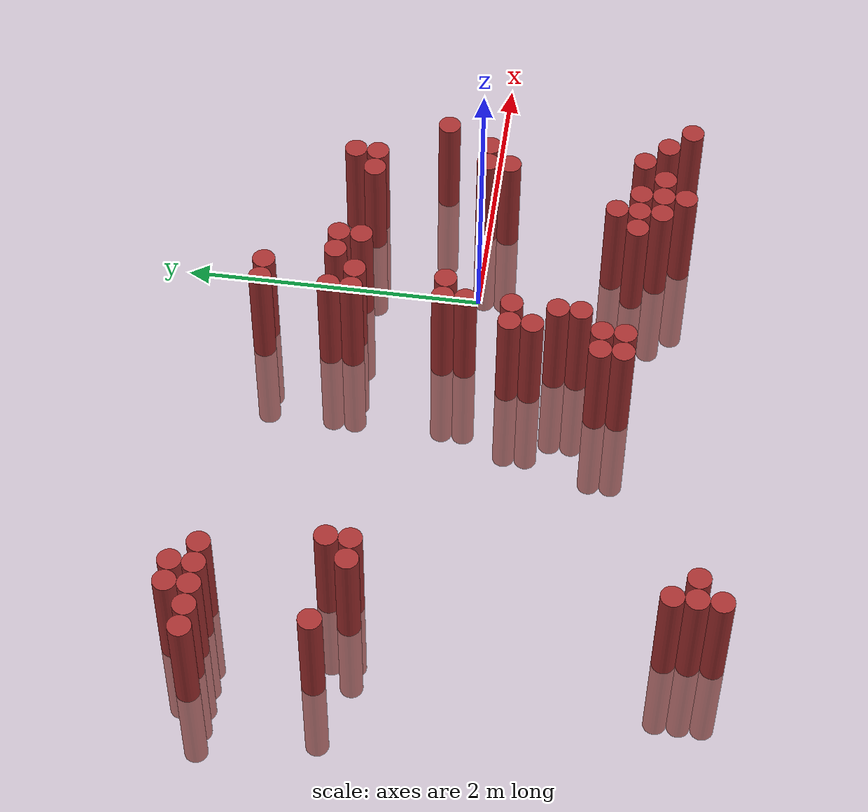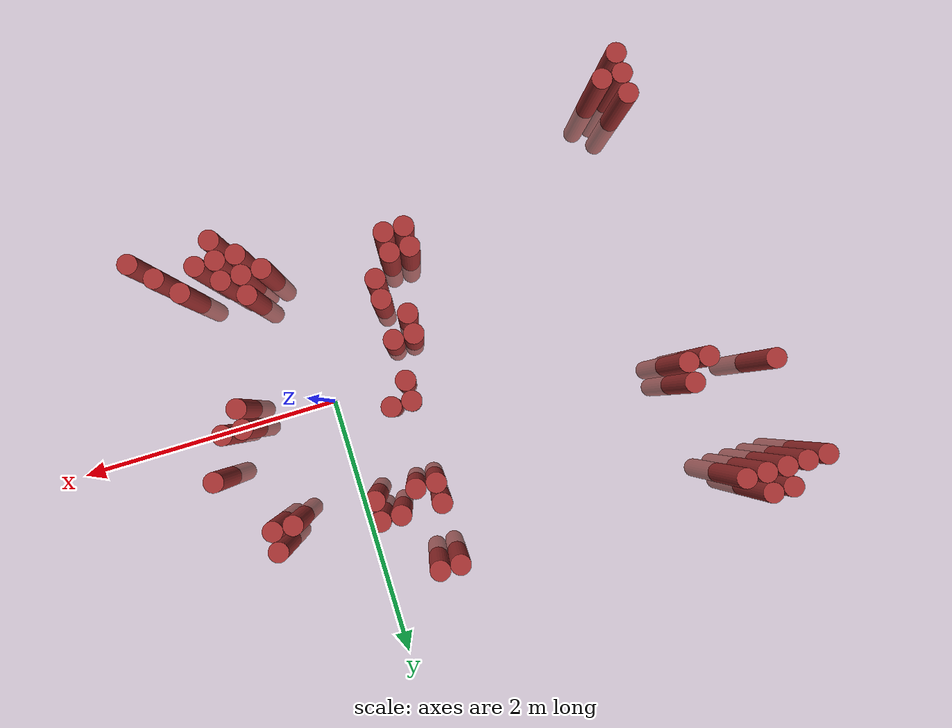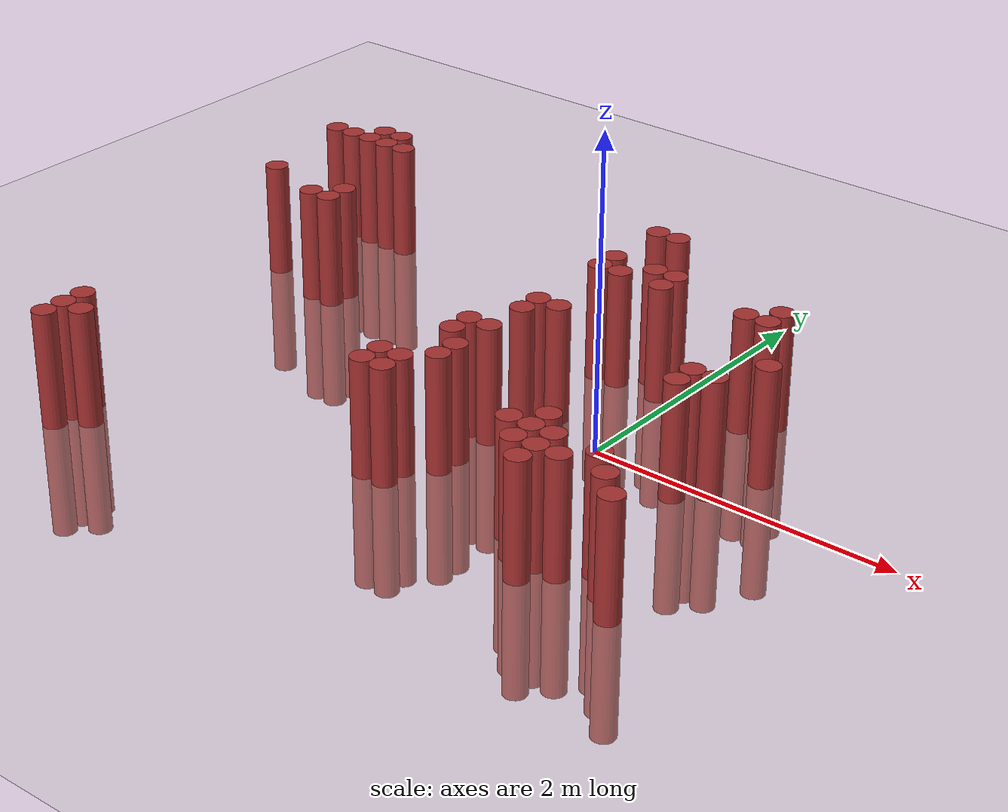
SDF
<sdf version="1.6">
 <world name="default">
  <model name="ground_plane">
   <static>1</static>
   <link name="link">
    <collision name="collision">
     <geometry><plane><normal>0 0 1</normal><size>100 100</size></plane></geometry>
     <surface><friction><ode><mu>100</mu><mu2>50</mu2></ode></friction></surface>
    </collision>
    <visual name="visual">
     <cast_shadows>0</cast_shadows>
     <geometry><plane><normal>0 0 1</normal><size>100 100</size></plane></geometry>
     <material>
      <script><uri>file://media/materials/scripts/gazebo.material</uri><name>Gazebo/Grey</name></script>
     </material>
    </visual>
   </link>
  </model>
  <model name="unit_cylinder_264">
   <static>1</static>
   <pose>-3.275000 1.375000 0.000000 0.000000 0.000000 0.000000</pose>
   <link name="link">
    <inertial>
     <mass>1</mass>
     <inertia><ixx>0.145833</ixx><ixy>0</ixy><ixz>0</ixz><iyy>0.145833</iyy><iyz>0</iyz><izz>0.125</izz></inertia>
    </inertial>
    <collision name="collision">
     <geometry><cylinder><radius>0.075000</radius><length>1.5</length></cylinder></geometry>
    </collision>
    <visual name="visual">
     <geometry><cylinder><radius>0.075000</radius><length>1.5</length></cylinder></geometry>
     <material>
      <ambient>0.648000 0.192000 0.192000 1</ambient>
      <diffuse>0.648000 0.192000 0.192000 1</diffuse>
     </material>
     <material>
      <script><name>Gazebo/Grey</name><uri>file://media/materials/scripts/gazebo.material</uri></script>
     </material>
    </visual>
   </link>
  </model>
  <model name="unit_cylinder_272">
   <static>1</static>
   <pose>-3.125000 0.625000 0.000000 0.000000 0.000000 0.000000</pose>
   <link name="link">
    <inertial>
     <mass>1</mass>
     <inertia><ixx>0.145833</ixx><ixy>0</ixy><ixz>0</ixz><iyy>0.145833</iyy><iyz>0</iyz><izz>0.125</izz></inertia>
    </inertial>
    <collision name="collision">
     <geometry><cylinder><radius>0.075000</radius><length>1.5</length></cylinder></geometry>
    </collision>
    <visual name="visual">
     <geometry><cylinder><radius>0.075000</radius><length>1.5</length></cylinder></geometry>
     <material>
      <ambient>0.648000 0.192000 0.192000 1</ambient>
      <diffuse>0.648000 0.192000 0.192000 1</diffuse>
     </material>
     <material>
      <script><name>Gazebo/Grey</name><uri>file://media/materials/scripts/gazebo.material</uri></script>
     </material>
    </visual>
   </link>
  </model>
  <model name="unit_cylinder_273">
   <static>1</static>
   <pose>-3.125000 1.375000 0.000000 0.000000 0.000000 0.000000</pose>
   <link name="link">
    <inertial>
     <mass>1</mass>
     <inertia><ixx>0.145833</ixx><ixy>0</ixy><ixz>0</ixz><iyy>0.145833</iyy><iyz>0</iyz><izz>0.125</izz></inertia>
    </inertial>
    <collision name="collision">
     <geometry><cylinder><radius>0.075000</radius><length>1.5</length></cylinder></geometry>
    </collision>
    <visual name="visual">
     <geometry><cylinder><radius>0.075000</radius><length>1.5</length></cylinder></geometry>
     <material>
      <ambient>0.648000 0.192000 0.192000 1</ambient>
      <diffuse>0.648000 0.192000 0.192000 1</diffuse>
     </material>
     <material>
      <script><name>Gazebo/Grey</name><uri>file://media/materials/scripts/gazebo.material</uri></script>
     </material>
    </visual>
   </link>
  </model>
  <model name="unit_cylinder_282">
   <static>1</static>
   <pose>-2.975000 1.375000 0.000000 0.000000 0.000000 0.000000</pose>
   <link name="link">
    <inertial>
     <mass>1</mass>
     <inertia><ixx>0.145833</ixx><ixy>0</ixy><ixz>0</ixz><iyy>0.145833</iyy><iyz>0</iyz><izz>0.125</izz></inertia>
    </inertial>
    <collision name="collision">
     <geometry><cylinder><radius>0.075000</radius><length>1.5</length></cylinder></geometry>
    </collision>
    <visual name="visual">
     <geometry><cylinder><radius>0.075000</radius><length>1.5</length></cylinder></geometry>
     <material>
      <ambient>0.648000 0.192000 0.192000 1</ambient>
      <diffuse>0.648000 0.192000 0.192000 1</diffuse>
     </material>
     <material>
      <script><name>Gazebo/Grey</name><uri>file://media/materials/scripts/gazebo.material</uri></script>
     </material>
    </visual>
   </link>
  </model>
  <model name="unit_cylinder_283">
   <static>1</static>
   <pose>-2.975000 1.525000 0.000000 0.000000 0.000000 0.000000</pose>
   <link name="link">
    <inertial>
     <mass>1</mass>
     <inertia><ixx>0.145833</ixx><ixy>0</ixy><ixz>0</ixz><iyy>0.145833</iyy><iyz>0</iyz><izz>0.125</izz></inertia>
    </inertial>
    <collision name="collision">
     <geometry><cylinder><radius>0.075000</radius><length>1.5</length></cylinder></geometry>
    </collision>
    <visual name="visual">
     <geometry><cylinder><radius>0.075000</radius><length>1.5</length></cylinder></geometry>
     <material>
      <ambient>0.648000 0.192000 0.192000 1</ambient>
      <diffuse>0.648000 0.192000 0.192000 1</diffuse>
     </material>
     <material>
      <script><name>Gazebo/Grey</name><uri>file://media/materials/scripts/gazebo.material</uri></script>
     </material>
    </visual>
   </link>
  </model>
  <model name="unit_cylinder_290">
   <static>1</static>
   <pose>-2.825000 1.375000 0.000000 0.000000 0.000000 0.000000</pose>
   <link name="link">
    <inertial>
     <mass>1</mass>
     <inertia><ixx>0.145833</ixx><ixy>0</ixy><ixz>0</ixz><iyy>0.145833</iyy><iyz>0</iyz><izz>0.125</izz></inertia>
    </inertial>
    <collision name="collision">
     <geometry><cylinder><radius>0.075000</radius><length>1.5</length></cylinder></geometry>
    </collision>
    <visual name="visual">
     <geometry><cylinder><radius>0.075000</radius><length>1.5</length></cylinder></geometry>
     <material>
      <ambient>0.648000 0.192000 0.192000 1</ambient>
      <diffuse>0.648000 0.192000 0.192000 1</diffuse>
     </material>
     <material>
      <script><name>Gazebo/Grey</name><uri>file://media/materials/scripts/gazebo.material</uri></script>
     </material>
    </visual>
   </link>
  </model>
  <model name="unit_cylinder_291">
   <static>1</static>
   <pose>-2.825000 1.525000 0.000000 0.000000 0.000000 0.000000</pose>
   <link name="link">
    <inertial>
     <mass>1</mass>
     <inertia><ixx>0.145833</ixx><ixy>0</ixy><ixz>0</ixz><iyy>0.145833</iyy><iyz>0</iyz><izz>0.125</izz></inertia>
    </inertial>
    <collision name="collision">
     <geometry><cylinder><radius>0.075000</radius><length>1.5</length></cylinder></geometry>
    </collision>
    <visual name="visual">
     <geometry><cylinder><radius>0.075000</radius><length>1.5</length></cylinder></geometry>
     <material>
      <ambient>0.648000 0.192000 0.192000 1</ambient>
      <diffuse>0.648000 0.192000 0.192000 1</diffuse>
     </material>
     <material>
      <script><name>Gazebo/Grey</name><uri>file://media/materials/scripts/gazebo.material</uri></script>
     </material>
    </visual>
   </link>
  </model>
  <model name="unit_cylinder_295">
   <static>1</static>
   <pose>-2.675000 -1.775000 0.000000 0.000000 0.000000 0.000000</pose>
   <link name="link">
    <inertial>
     <mass>1</mass>
     <inertia><ixx>0.145833</ixx><ixy>0</ixy><ixz>0</ixz><iyy>0.145833</iyy><iyz>0</iyz><izz>0.125</izz></inertia>
    </inertial>
    <collision name="collision">
     <geometry><cylinder><radius>0.075000</radius><length>1.5</length></cylinder></geometry>
    </collision>
    <visual name="visual">
     <geometry><cylinder><radius>0.075000</radius><length>1.5</length></cylinder></geometry>
     <material>
      <ambient>0.648000 0.192000 0.192000 1</ambient>
      <diffuse>0.648000 0.192000 0.192000 1</diffuse>
     </material>
     <material>
      <script><name>Gazebo/Grey</name><uri>file://media/materials/scripts/gazebo.material</uri></script>
     </material>
    </visual>
   </link>
  </model>
  <model name="unit_cylinder_296">
   <static>1</static>
   <pose>-2.675000 -1.625000 0.000000 0.000000 0.000000 0.000000</pose>
   <link name="link">
    <inertial>
     <mass>1</mass>
     <inertia><ixx>0.145833</ixx><ixy>0</ixy><ixz>0</ixz><iyy>0.145833</iyy><iyz>0</iyz><izz>0.125</izz></inertia>
    </inertial>
    <collision name="collision">
     <geometry><cylinder><radius>0.075000</radius><length>1.5</length></cylinder></geometry>
    </collision>
    <visual name="visual">
     <geometry><cylinder><radius>0.075000</radius><length>1.5</length></cylinder></geometry>
     <material>
      <ambient>0.648000 0.192000 0.192000 1</ambient>
      <diffuse>0.648000 0.192000 0.192000 1</diffuse>
     </material>
     <material>
      <script><name>Gazebo/Grey</name><uri>file://media/materials/scripts/gazebo.material</uri></script>
     </material>
    </visual>
   </link>
  </model>
  <model name="unit_cylinder_297">
   <static>1</static>
   <pose>-2.675000 -1.475000 0.000000 0.000000 0.000000 0.000000</pose>
   <link name="link">
    <inertial>
     <mass>1</mass>
     <inertia><ixx>0.145833</ixx><ixy>0</ixy><ixz>0</ixz><iyy>0.145833</iyy><iyz>0</iyz><izz>0.125</izz></inertia>
    </inertial>
    <collision name="collision">
     <geometry><cylinder><radius>0.075000</radius><length>1.5</length></cylinder></geometry>
    </collision>
    <visual name="visual">
     <geometry><cylinder><radius>0.075000</radius><length>1.5</length></cylinder></geometry>
     <material>
      <ambient>0.648000 0.192000 0.192000 1</ambient>
      <diffuse>0.648000 0.192000 0.192000 1</diffuse>
     </material>
     <material>
      <script><name>Gazebo/Grey</name><uri>file://media/materials/scripts/gazebo.material</uri></script>
     </material>
    </visual>
   </link>
  </model>
  <model name="unit_cylinder_298">
   <static>1</static>
   <pose>-2.675000 0.475000 0.000000 0.000000 0.000000 0.000000</pose>
   <link name="link">
    <inertial>
     <mass>1</mass>
     <inertia><ixx>0.145833</ixx><ixy>0</ixy><ixz>0</ixz><iyy>0.145833</iyy><iyz>0</iyz><izz>0.125</izz></inertia>
    </inertial>
    <collision name="collision">
     <geometry><cylinder><radius>0.075000</radius><length>1.5</length></cylinder></geometry>
    </collision>
    <visual name="visual">
     <geometry><cylinder><radius>0.075000</radius><length>1.5</length></cylinder></geometry>
     <material>
      <ambient>0.648000 0.192000 0.192000 1</ambient>
      <diffuse>0.648000 0.192000 0.192000 1</diffuse>
     </material>
     <material>
      <script><name>Gazebo/Grey</name><uri>file://media/materials/scripts/gazebo.material</uri></script>
     </material>
    </visual>
   </link>
  </model>
  <model name="unit_cylinder_299">
   <static>1</static>
   <pose>-2.675000 1.375000 0.000000 0.000000 0.000000 0.000000</pose>
   <link name="link">
    <inertial>
     <mass>1</mass>
     <inertia><ixx>0.145833</ixx><ixy>0</ixy><ixz>0</ixz><iyy>0.145833</iyy><iyz>0</iyz><izz>0.125</izz></inertia>
    </inertial>
    <collision name="collision">
     <geometry><cylinder><radius>0.075000</radius><length>1.5</length></cylinder></geometry>
    </collision>
    <visual name="visual">
     <geometry><cylinder><radius>0.075000</radius><length>1.5</length></cylinder></geometry>
     <material>
      <ambient>0.648000 0.192000 0.192000 1</ambient>
      <diffuse>0.648000 0.192000 0.192000 1</diffuse>
     </material>
     <material>
      <script><name>Gazebo/Grey</name><uri>file://media/materials/scripts/gazebo.material</uri></script>
     </material>
    </visual>
   </link>
  </model>
  <model name="unit_cylinder_305">
   <static>1</static>
   <pose>-2.525000 -1.625000 0.000000 0.000000 0.000000 0.000000</pose>
   <link name="link">
    <inertial>
     <mass>1</mass>
     <inertia><ixx>0.145833</ixx><ixy>0</ixy><ixz>0</ixz><iyy>0.145833</iyy><iyz>0</iyz><izz>0.125</izz></inertia>
    </inertial>
    <collision name="collision">
     <geometry><cylinder><radius>0.075000</radius><length>1.5</length></cylinder></geometry>
    </collision>
    <visual name="visual">
     <geometry><cylinder><radius>0.075000</radius><length>1.5</length></cylinder></geometry>
     <material>
      <ambient>0.648000 0.192000 0.192000 1</ambient>
      <diffuse>0.648000 0.192000 0.192000 1</diffuse>
     </material>
     <material>
      <script><name>Gazebo/Grey</name><uri>file://media/materials/scripts/gazebo.material</uri></script>
     </material>
    </visual>
   </link>
  </model>
  <model name="unit_cylinder_306">
   <static>1</static>
   <pose>-2.525000 0.475000 0.000000 0.000000 0.000000 0.000000</pose>
   <link name="link">
    <inertial>
     <mass>1</mass>
     <inertia><ixx>0.145833</ixx><ixy>0</ixy><ixz>0</ixz><iyy>0.145833</iyy><iyz>0</iyz><izz>0.125</izz></inertia>
    </inertial>
    <collision name="collision">
     <geometry><cylinder><radius>0.075000</radius><length>1.5</length></cylinder></geometry>
    </collision>
    <visual name="visual">
     <geometry><cylinder><radius>0.075000</radius><length>1.5</length></cylinder></geometry>
     <material>
      <ambient>0.648000 0.192000 0.192000 1</ambient>
      <diffuse>0.648000 0.192000 0.192000 1</diffuse>
     </material>
     <material>
      <script><name>Gazebo/Grey</name><uri>file://media/materials/scripts/gazebo.material</uri></script>
     </material>
    </visual>
   </link>
  </model>
  <model name="unit_cylinder_307">
   <static>1</static>
   <pose>-2.525000 0.625000 0.000000 0.000000 0.000000 0.000000</pose>
   <link name="link">
    <inertial>
     <mass>1</mass>
     <inertia><ixx>0.145833</ixx><ixy>0</ixy><ixz>0</ixz><iyy>0.145833</iyy><iyz>0</iyz><izz>0.125</izz></inertia>
    </inertial>
    <collision name="collision">
     <geometry><cylinder><radius>0.075000</radius><length>1.5</length></cylinder></geometry>
    </collision>
    <visual name="visual">
     <geometry><cylinder><radius>0.075000</radius><length>1.5</length></cylinder></geometry>
     <material>
      <ambient>0.648000 0.192000 0.192000 1</ambient>
      <diffuse>0.648000 0.192000 0.192000 1</diffuse>
     </material>
     <material>
      <script><name>Gazebo/Grey</name><uri>file://media/materials/scripts/gazebo.material</uri></script>
     </material>
    </visual>
   </link>
  </model>
  <model name="unit_cylinder_344">
   <static>1</static>
   <pose>-0.875000 -1.025000 0.000000 0.000000 0.000000 0.000000</pose>
   <link name="link">
    <inertial>
     <mass>1</mass>
     <inertia><ixx>0.145833</ixx><ixy>0</ixy><ixz>0</ixz><iyy>0.145833</iyy><iyz>0</iyz><izz>0.125</izz></inertia>
    </inertial>
    <collision name="collision">
     <geometry><cylinder><radius>0.075000</radius><length>1.5</length></cylinder></geometry>
    </collision>
    <visual name="visual">
     <geometry><cylinder><radius>0.075000</radius><length>1.5</length></cylinder></geometry>
     <material>
      <ambient>0.648000 0.192000 0.192000 1</ambient>
      <diffuse>0.648000 0.192000 0.192000 1</diffuse>
     </material>
     <material>
      <script><name>Gazebo/Grey</name><uri>file://media/materials/scripts/gazebo.material</uri></script>
     </material>
    </visual>
   </link>
  </model>
  <model name="unit_cylinder_345">
   <static>1</static>
   <pose>-0.875000 -0.875000 0.000000 0.000000 0.000000 0.000000</pose>
   <link name="link">
    <inertial>
     <mass>1</mass>
     <inertia><ixx>0.145833</ixx><ixy>0</ixy><ixz>0</ixz><iyy>0.145833</iyy><iyz>0</iyz><izz>0.125</izz></inertia>
    </inertial>
    <collision name="collision">
     <geometry><cylinder><radius>0.075000</radius><length>1.5</length></cylinder></geometry>
    </collision>
    <visual name="visual">
     <geometry><cylinder><radius>0.075000</radius><length>1.5</length></cylinder></geometry>
     <material>
      <ambient>0.648000 0.192000 0.192000 1</ambient>
      <diffuse>0.648000 0.192000 0.192000 1</diffuse>
     </material>
     <material>
      <script><name>Gazebo/Grey</name><uri>file://media/materials/scripts/gazebo.material</uri></script>
     </material>
    </visual>
   </link>
  </model>
  <model name="unit_cylinder_350">
   <static>1</static>
   <pose>-0.725000 -1.025000 0.000000 0.000000 0.000000 0.000000</pose>
   <link name="link">
    <inertial>
     <mass>1</mass>
     <inertia><ixx>0.145833</ixx><ixy>0</ixy><ixz>0</ixz><iyy>0.145833</iyy><iyz>0</iyz><izz>0.125</izz></inertia>
    </inertial>
    <collision name="collision">
     <geometry><cylinder><radius>0.075000</radius><length>1.5</length></cylinder></geometry>
    </collision>
    <visual name="visual">
     <geometry><cylinder><radius>0.075000</radius><length>1.5</length></cylinder></geometry>
     <material>
      <ambient>0.648000 0.192000 0.192000 1</ambient>
      <diffuse>0.648000 0.192000 0.192000 1</diffuse>
     </material>
     <material>
      <script><name>Gazebo/Grey</name><uri>file://media/materials/scripts/gazebo.material</uri></script>
     </material>
    </visual>
   </link>
  </model>
  <model name="unit_cylinder_351">
   <static>1</static>
   <pose>-0.725000 -0.875000 0.000000 0.000000 0.000000 0.000000</pose>
   <link name="link">
    <inertial>
     <mass>1</mass>
     <inertia><ixx>0.145833</ixx><ixy>0</ixy><ixz>0</ixz><iyy>0.145833</iyy><iyz>0</iyz><izz>0.125</izz></inertia>
    </inertial>
    <collision name="collision">
     <geometry><cylinder><radius>0.075000</radius><length>1.5</length></cylinder></geometry>
    </collision>
    <visual name="visual">
     <geometry><cylinder><radius>0.075000</radius><length>1.5</length></cylinder></geometry>
     <material>
      <ambient>0.648000 0.192000 0.192000 1</ambient>
      <diffuse>0.648000 0.192000 0.192000 1</diffuse>
     </material>
     <material>
      <script><name>Gazebo/Grey</name><uri>file://media/materials/scripts/gazebo.material</uri></script>
     </material>
    </visual>
   </link>
  </model>
  <model name="unit_cylinder_352">
   <static>1</static>
   <pose>-0.725000 -0.425000 0.000000 0.000000 0.000000 0.000000</pose>
   <link name="link">
    <inertial>
     <mass>1</mass>
     <inertia><ixx>0.145833</ixx><ixy>0</ixy><ixz>0</ixz><iyy>0.145833</iyy><iyz>0</iyz><izz>0.125</izz></inertia>
    </inertial>
    <collision name="collision">
     <geometry><cylinder><radius>0.075000</radius><length>1.5</length></cylinder></geometry>
    </collision>
    <visual name="visual">
     <geometry><cylinder><radius>0.075000</radius><length>1.5</length></cylinder></geometry>
     <material>
      <ambient>0.648000 0.192000 0.192000 1</ambient>
      <diffuse>0.648000 0.192000 0.192000 1</diffuse>
     </material>
     <material>
      <script><name>Gazebo/Grey</name><uri>file://media/materials/scripts/gazebo.material</uri></script>
     </material>
    </visual>
   </link>
  </model>
  <model name="unit_cylinder_353">
   <static>1</static>
   <pose>-0.725000 -0.275000 0.000000 0.000000 0.000000 0.000000</pose>
   <link name="link">
    <inertial>
     <mass>1</mass>
     <inertia><ixx>0.145833</ixx><ixy>0</ixy><ixz>0</ixz><iyy>0.145833</iyy><iyz>0</iyz><izz>0.125</izz></inertia>
    </inertial>
    <collision name="collision">
     <geometry><cylinder><radius>0.075000</radius><length>1.5</length></cylinder></geometry>
    </collision>
    <visual name="visual">
     <geometry><cylinder><radius>0.075000</radius><length>1.5</length></cylinder></geometry>
     <material>
      <ambient>0.648000 0.192000 0.192000 1</ambient>
      <diffuse>0.648000 0.192000 0.192000 1</diffuse>
     </material>
     <material>
      <script><name>Gazebo/Grey</name><uri>file://media/materials/scripts/gazebo.material</uri></script>
     </material>
    </visual>
   </link>
  </model>
  <model name="unit_cylinder_357">
   <static>1</static>
   <pose>-0.575000 -0.725000 0.000000 0.000000 0.000000 0.000000</pose>
   <link name="link">
    <inertial>
     <mass>1</mass>
     <inertia><ixx>0.145833</ixx><ixy>0</ixy><ixz>0</ixz><iyy>0.145833</iyy><iyz>0</iyz><izz>0.125</izz></inertia>
    </inertial>
    <collision name="collision">
     <geometry><cylinder><radius>0.075000</radius><length>1.5</length></cylinder></geometry>
    </collision>
    <visual name="visual">
     <geometry><cylinder><radius>0.075000</radius><length>1.5</length></cylinder></geometry>
     <material>
      <ambient>0.648000 0.192000 0.192000 1</ambient>
      <diffuse>0.648000 0.192000 0.192000 1</diffuse>
     </material>
     <material>
      <script><name>Gazebo/Grey</name><uri>file://media/materials/scripts/gazebo.material</uri></script>
     </material>
    </visual>
   </link>
  </model>
  <model name="unit_cylinder_358">
   <static>1</static>
   <pose>-0.575000 -0.575000 0.000000 0.000000 0.000000 0.000000</pose>
   <link name="link">
    <inertial>
     <mass>1</mass>
     <inertia><ixx>0.145833</ixx><ixy>0</ixy><ixz>0</ixz><iyy>0.145833</iyy><iyz>0</iyz><izz>0.125</izz></inertia>
    </inertial>
    <collision name="collision">
     <geometry><cylinder><radius>0.075000</radius><length>1.5</length></cylinder></geometry>
    </collision>
    <visual name="visual">
     <geometry><cylinder><radius>0.075000</radius><length>1.5</length></cylinder></geometry>
     <material>
      <ambient>0.648000 0.192000 0.192000 1</ambient>
      <diffuse>0.648000 0.192000 0.192000 1</diffuse>
     </material>
     <material>
      <script><name>Gazebo/Grey</name><uri>file://media/materials/scripts/gazebo.material</uri></script>
     </material>
    </visual>
   </link>
  </model>
  <model name="unit_cylinder_359">
   <static>1</static>
   <pose>-0.575000 -0.275000 0.000000 0.000000 0.000000 0.000000</pose>
   <link name="link">
    <inertial>
     <mass>1</mass>
     <inertia><ixx>0.145833</ixx><ixy>0</ixy><ixz>0</ixz><iyy>0.145833</iyy><iyz>0</iyz><izz>0.125</izz></inertia>
    </inertial>
    <collision name="collision">
     <geometry><cylinder><radius>0.075000</radius><length>1.5</length></cylinder></geometry>
    </collision>
    <visual name="visual">
     <geometry><cylinder><radius>0.075000</radius><length>1.5</length></cylinder></geometry>
     <material>
      <ambient>0.648000 0.192000 0.192000 1</ambient>
      <diffuse>0.648000 0.192000 0.192000 1</diffuse>
     </material>
     <material>
      <script><name>Gazebo/Grey</name><uri>file://media/materials/scripts/gazebo.material</uri></script>
     </material>
    </visual>
   </link>
  </model>
  <model name="unit_cylinder_360">
   <static>1</static>
   <pose>-0.575000 0.025000 0.000000 0.000000 0.000000 0.000000</pose>
   <link name="link">
    <inertial>
     <mass>1</mass>
     <inertia><ixx>0.145833</ixx><ixy>0</ixy><ixz>0</ixz><iyy>0.145833</iyy><iyz>0</iyz><izz>0.125</izz></inertia>
    </inertial>
    <collision name="collision">
     <geometry><cylinder><radius>0.075000</radius><length>1.5</length></cylinder></geometry>
    </collision>
    <visual name="visual">
     <geometry><cylinder><radius>0.075000</radius><length>1.5</length></cylinder></geometry>
     <material>
      <ambient>0.648000 0.192000 0.192000 1</ambient>
      <diffuse>0.648000 0.192000 0.192000 1</diffuse>
     </material>
     <material>
      <script><name>Gazebo/Grey</name><uri>file://media/materials/scripts/gazebo.material</uri></script>
     </material>
    </visual>
   </link>
  </model>
  <model name="unit_cylinder_361">
   <static>1</static>
   <pose>-0.575000 0.175000 0.000000 0.000000 0.000000 0.000000</pose>
   <link name="link">
    <inertial>
     <mass>1</mass>
     <inertia><ixx>0.145833</ixx><ixy>0</ixy><ixz>0</ixz><iyy>0.145833</iyy><iyz>0</iyz><izz>0.125</izz></inertia>
    </inertial>
    <collision name="collision">
     <geometry><cylinder><radius>0.075000</radius><length>1.5</length></cylinder></geometry>
    </collision>
    <visual name="visual">
     <geometry><cylinder><radius>0.075000</radius><length>1.5</length></cylinder></geometry>
     <material>
      <ambient>0.648000 0.192000 0.192000 1</ambient>
      <diffuse>0.648000 0.192000 0.192000 1</diffuse>
     </material>
     <material>
      <script><name>Gazebo/Grey</name><uri>file://media/materials/scripts/gazebo.material</uri></script>
     </material>
    </visual>
   </link>
  </model>
  <model name="unit_cylinder_362">
   <static>1</static>
   <pose>-0.575000 0.775000 0.000000 0.000000 0.000000 0.000000</pose>
   <link name="link">
    <inertial>
     <mass>1</mass>
     <inertia><ixx>0.145833</ixx><ixy>0</ixy><ixz>0</ixz><iyy>0.145833</iyy><iyz>0</iyz><izz>0.125</izz></inertia>
    </inertial>
    <collision name="collision">
     <geometry><cylinder><radius>0.075000</radius><length>1.5</length></cylinder></geometry>
    </collision>
    <visual name="visual">
     <geometry><cylinder><radius>0.075000</radius><length>1.5</length></cylinder></geometry>
     <material>
      <ambient>0.648000 0.192000 0.192000 1</ambient>
      <diffuse>0.648000 0.192000 0.192000 1</diffuse>
     </material>
     <material>
      <script><name>Gazebo/Grey</name><uri>file://media/materials/scripts/gazebo.material</uri></script>
     </material>
    </visual>
   </link>
  </model>
  <model name="unit_cylinder_363">
   <static>1</static>
   <pose>-0.575000 0.925000 0.000000 0.000000 0.000000 0.000000</pose>
   <link name="link">
    <inertial>
     <mass>1</mass>
     <inertia><ixx>0.145833</ixx><ixy>0</ixy><ixz>0</ixz><iyy>0.145833</iyy><iyz>0</iyz><izz>0.125</izz></inertia>
    </inertial>
    <collision name="collision">
     <geometry><cylinder><radius>0.075000</radius><length>1.5</length></cylinder></geometry>
    </collision>
    <visual name="visual">
     <geometry><cylinder><radius>0.075000</radius><length>1.5</length></cylinder></geometry>
     <material>
      <ambient>0.648000 0.192000 0.192000 1</ambient>
      <diffuse>0.648000 0.192000 0.192000 1</diffuse>
     </material>
     <material>
      <script><name>Gazebo/Grey</name><uri>file://media/materials/scripts/gazebo.material</uri></script>
     </material>
    </visual>
   </link>
  </model>
  <model name="unit_cylinder_364">
   <static>1</static>
   <pose>-0.575000 1.375000 0.000000 0.000000 0.000000 0.000000</pose>
   <link name="link">
    <inertial>
     <mass>1</mass>
     <inertia><ixx>0.145833</ixx><ixy>0</ixy><ixz>0</ixz><iyy>0.145833</iyy><iyz>0</iyz><izz>0.125</izz></inertia>
    </inertial>
    <collision name="collision">
     <geometry><cylinder><radius>0.075000</radius><length>1.5</length></cylinder></geometry>
    </collision>
    <visual name="visual">
     <geometry><cylinder><radius>0.075000</radius><length>1.5</length></cylinder></geometry>
     <material>
      <ambient>0.648000 0.192000 0.192000 1</ambient>
      <diffuse>0.648000 0.192000 0.192000 1</diffuse>
     </material>
     <material>
      <script><name>Gazebo/Grey</name><uri>file://media/materials/scripts/gazebo.material</uri></script>
     </material>
    </visual>
   </link>
  </model>
  <model name="unit_cylinder_369">
   <static>1</static>
   <pose>-0.425000 0.175000 0.000000 0.000000 0.000000 0.000000</pose>
   <link name="link">
    <inertial>
     <mass>1</mass>
     <inertia><ixx>0.145833</ixx><ixy>0</ixy><ixz>0</ixz><iyy>0.145833</iyy><iyz>0</iyz><izz>0.125</izz></inertia>
    </inertial>
    <collision name="collision">
     <geometry><cylinder><radius>0.075000</radius><length>1.5</length></cylinder></geometry>
    </collision>
    <visual name="visual">
     <geometry><cylinder><radius>0.075000</radius><length>1.5</length></cylinder></geometry>
     <material>
      <ambient>0.648000 0.192000 0.192000 1</ambient>
      <diffuse>0.648000 0.192000 0.192000 1</diffuse>
     </material>
     <material>
      <script><name>Gazebo/Grey</name><uri>file://media/materials/scripts/gazebo.material</uri></script>
     </material>
    </visual>
   </link>
  </model>
  <model name="unit_cylinder_370">
   <static>1</static>
   <pose>-0.425000 0.775000 0.000000 0.000000 0.000000 0.000000</pose>
   <link name="link">
    <inertial>
     <mass>1</mass>
     <inertia><ixx>0.145833</ixx><ixy>0</ixy><ixz>0</ixz><iyy>0.145833</iyy><iyz>0</iyz><izz>0.125</izz></inertia>
    </inertial>
    <collision name="collision">
     <geometry><cylinder><radius>0.075000</radius><length>1.5</length></cylinder></geometry>
    </collision>
    <visual name="visual">
     <geometry><cylinder><radius>0.075000</radius><length>1.5</length></cylinder></geometry>
     <material>
      <ambient>0.648000 0.192000 0.192000 1</ambient>
      <diffuse>0.648000 0.192000 0.192000 1</diffuse>
     </material>
     <material>
      <script><name>Gazebo/Grey</name><uri>file://media/materials/scripts/gazebo.material</uri></script>
     </material>
    </visual>
   </link>
  </model>
  <model name="unit_cylinder_371">
   <static>1</static>
   <pose>-0.425000 1.375000 0.000000 0.000000 0.000000 0.000000</pose>
   <link name="link">
    <inertial>
     <mass>1</mass>
     <inertia><ixx>0.145833</ixx><ixy>0</ixy><ixz>0</ixz><iyy>0.145833</iyy><iyz>0</iyz><izz>0.125</izz></inertia>
    </inertial>
    <collision name="collision">
     <geometry><cylinder><radius>0.075000</radius><length>1.5</length></cylinder></geometry>
    </collision>
    <visual name="visual">
     <geometry><cylinder><radius>0.075000</radius><length>1.5</length></cylinder></geometry>
     <material>
      <ambient>0.648000 0.192000 0.192000 1</ambient>
      <diffuse>0.648000 0.192000 0.192000 1</diffuse>
     </material>
     <material>
      <script><name>Gazebo/Grey</name><uri>file://media/materials/scripts/gazebo.material</uri></script>
     </material>
    </visual>
   </link>
  </model>
  <model name="unit_cylinder_375">
   <static>1</static>
   <pose>-0.275000 0.925000 0.000000 0.000000 0.000000 0.000000</pose>
   <link name="link">
    <inertial>
     <mass>1</mass>
     <inertia><ixx>0.145833</ixx><ixy>0</ixy><ixz>0</ixz><iyy>0.145833</iyy><iyz>0</iyz><izz>0.125</izz></inertia>
    </inertial>
    <collision name="collision">
     <geometry><cylinder><radius>0.075000</radius><length>1.5</length></cylinder></geometry>
    </collision>
    <visual name="visual">
     <geometry><cylinder><radius>0.075000</radius><length>1.5</length></cylinder></geometry>
     <material>
      <ambient>0.648000 0.192000 0.192000 1</ambient>
      <diffuse>0.648000 0.192000 0.192000 1</diffuse>
     </material>
     <material>
      <script><name>Gazebo/Grey</name><uri>file://media/materials/scripts/gazebo.material</uri></script>
     </material>
    </visual>
   </link>
  </model>
  <model name="unit_cylinder_379">
   <static>1</static>
   <pose>-0.125000 0.775000 0.000000 0.000000 0.000000 0.000000</pose>
   <link name="link">
    <inertial>
     <mass>1</mass>
     <inertia><ixx>0.145833</ixx><ixy>0</ixy><ixz>0</ixz><iyy>0.145833</iyy><iyz>0</iyz><izz>0.125</izz></inertia>
    </inertial>
    <collision name="collision">
     <geometry><cylinder><radius>0.075000</radius><length>1.5</length></cylinder></geometry>
    </collision>
    <visual name="visual">
     <geometry><cylinder><radius>0.075000</radius><length>1.5</length></cylinder></geometry>
     <material>
      <ambient>0.648000 0.192000 0.192000 1</ambient>
      <diffuse>0.648000 0.192000 0.192000 1</diffuse>
     </material>
     <material>
      <script><name>Gazebo/Grey</name><uri>file://media/materials/scripts/gazebo.material</uri></script>
     </material>
    </visual>
   </link>
  </model>
  <model name="unit_cylinder_380">
   <static>1</static>
   <pose>-0.125000 0.925000 0.000000 0.000000 0.000000 0.000000</pose>
   <link name="link">
    <inertial>
     <mass>1</mass>
     <inertia><ixx>0.145833</ixx><ixy>0</ixy><ixz>0</ixz><iyy>0.145833</iyy><iyz>0</iyz><izz>0.125</izz></inertia>
    </inertial>
    <collision name="collision">
     <geometry><cylinder><radius>0.075000</radius><length>1.5</length></cylinder></geometry>
    </collision>
    <visual name="visual">
     <geometry><cylinder><radius>0.075000</radius><length>1.5</length></cylinder></geometry>
     <material>
      <ambient>0.648000 0.192000 0.192000 1</ambient>
      <diffuse>0.648000 0.192000 0.192000 1</diffuse>
     </material>
     <material>
      <script><name>Gazebo/Grey</name><uri>file://media/materials/scripts/gazebo.material</uri></script>
     </material>
    </visual>
   </link>
  </model>
  <model name="unit_cylinder_384">
   <static>1</static>
   <pose>0.175000 -1.025000 0.000000 0.000000 0.000000 0.000000</pose>
   <link name="link">
    <inertial>
     <mass>1</mass>
     <inertia><ixx>0.145833</ixx><ixy>0</ixy><ixz>0</ixz><iyy>0.145833</iyy><iyz>0</iyz><izz>0.125</izz></inertia>
    </inertial>
    <collision name="collision">
     <geometry><cylinder><radius>0.075000</radius><length>1.5</length></cylinder></geometry>
    </collision>
    <visual name="visual">
     <geometry><cylinder><radius>0.075000</radius><length>1.5</length></cylinder></geometry>
     <material>
      <ambient>0.648000 0.192000 0.192000 1</ambient>
      <diffuse>0.648000 0.192000 0.192000 1</diffuse>
     </material>
     <material>
      <script><name>Gazebo/Grey</name><uri>file://media/materials/scripts/gazebo.material</uri></script>
     </material>
    </visual>
   </link>
  </model>
  <model name="unit_cylinder_389">
   <static>1</static>
   <pose>0.325000 -1.175000 0.000000 0.000000 0.000000 0.000000</pose>
   <link name="link">
    <inertial>
     <mass>1</mass>
     <inertia><ixx>0.145833</ixx><ixy>0</ixy><ixz>0</ixz><iyy>0.145833</iyy><iyz>0</iyz><izz>0.125</izz></inertia>
    </inertial>
    <collision name="collision">
     <geometry><cylinder><radius>0.075000</radius><length>1.5</length></cylinder></geometry>
    </collision>
    <visual name="visual">
     <geometry><cylinder><radius>0.075000</radius><length>1.5</length></cylinder></geometry>
     <material>
      <ambient>0.648000 0.192000 0.192000 1</ambient>
      <diffuse>0.648000 0.192000 0.192000 1</diffuse>
     </material>
     <material>
      <script><name>Gazebo/Grey</name><uri>file://media/materials/scripts/gazebo.material</uri></script>
     </material>
    </visual>
   </link>
  </model>
  <model name="unit_cylinder_390">
   <static>1</static>
   <pose>0.325000 -1.025000 0.000000 0.000000 0.000000 0.000000</pose>
   <link name="link">
    <inertial>
     <mass>1</mass>
     <inertia><ixx>0.145833</ixx><ixy>0</ixy><ixz>0</ixz><iyy>0.145833</iyy><iyz>0</iyz><izz>0.125</izz></inertia>
    </inertial>
    <collision name="collision">
     <geometry><cylinder><radius>0.075000</radius><length>1.5</length></cylinder></geometry>
    </collision>
    <visual name="visual">
     <geometry><cylinder><radius>0.075000</radius><length>1.5</length></cylinder></geometry>
     <material>
      <ambient>0.648000 0.192000 0.192000 1</ambient>
      <diffuse>0.648000 0.192000 0.192000 1</diffuse>
     </material>
     <material>
      <script><name>Gazebo/Grey</name><uri>file://media/materials/scripts/gazebo.material</uri></script>
     </material>
    </visual>
   </link>
  </model>
  <model name="unit_cylinder_391">
   <static>1</static>
   <pose>0.325000 -0.875000 0.000000 0.000000 0.000000 0.000000</pose>
   <link name="link">
    <inertial>
     <mass>1</mass>
     <inertia><ixx>0.145833</ixx><ixy>0</ixy><ixz>0</ixz><iyy>0.145833</iyy><iyz>0</iyz><izz>0.125</izz></inertia>
    </inertial>
    <collision name="collision">
     <geometry><cylinder><radius>0.075000</radius><length>1.5</length></cylinder></geometry>
    </collision>
    <visual name="visual">
     <geometry><cylinder><radius>0.075000</radius><length>1.5</length></cylinder></geometry>
     <material>
      <ambient>0.648000 0.192000 0.192000 1</ambient>
      <diffuse>0.648000 0.192000 0.192000 1</diffuse>
     </material>
     <material>
      <script><name>Gazebo/Grey</name><uri>file://media/materials/scripts/gazebo.material</uri></script>
     </material>
    </visual>
   </link>
  </model>
  <model name="unit_cylinder_395">
   <static>1</static>
   <pose>0.475000 -1.325000 0.000000 0.000000 0.000000 0.000000</pose>
   <link name="link">
    <inertial>
     <mass>1</mass>
     <inertia><ixx>0.145833</ixx><ixy>0</ixy><ixz>0</ixz><iyy>0.145833</iyy><iyz>0</iyz><izz>0.125</izz></inertia>
    </inertial>
    <collision name="collision">
     <geometry><cylinder><radius>0.075000</radius><length>1.5</length></cylinder></geometry>
    </collision>
    <visual name="visual">
     <geometry><cylinder><radius>0.075000</radius><length>1.5</length></cylinder></geometry>
     <material>
      <ambient>0.648000 0.192000 0.192000 1</ambient>
      <diffuse>0.648000 0.192000 0.192000 1</diffuse>
     </material>
     <material>
      <script><name>Gazebo/Grey</name><uri>file://media/materials/scripts/gazebo.material</uri></script>
     </material>
    </visual>
   </link>
  </model>
  <model name="unit_cylinder_396">
   <static>1</static>
   <pose>0.475000 -1.175000 0.000000 0.000000 0.000000 0.000000</pose>
   <link name="link">
    <inertial>
     <mass>1</mass>
     <inertia><ixx>0.145833</ixx><ixy>0</ixy><ixz>0</ixz><iyy>0.145833</iyy><iyz>0</iyz><izz>0.125</izz></inertia>
    </inertial>
    <collision name="collision">
     <geometry><cylinder><radius>0.075000</radius><length>1.5</length></cylinder></geometry>
    </collision>
    <visual name="visual">
     <geometry><cylinder><radius>0.075000</radius><length>1.5</length></cylinder></geometry>
     <material>
      <ambient>0.648000 0.192000 0.192000 1</ambient>
      <diffuse>0.648000 0.192000 0.192000 1</diffuse>
     </material>
     <material>
      <script><name>Gazebo/Grey</name><uri>file://media/materials/scripts/gazebo.material</uri></script>
     </material>
    </visual>
   </link>
  </model>
  <model name="unit_cylinder_397">
   <static>1</static>
   <pose>0.475000 -1.025000 0.000000 0.000000 0.000000 0.000000</pose>
   <link name="link">
    <inertial>
     <mass>1</mass>
     <inertia><ixx>0.145833</ixx><ixy>0</ixy><ixz>0</ixz><iyy>0.145833</iyy><iyz>0</iyz><izz>0.125</izz></inertia>
    </inertial>
    <collision name="collision">
     <geometry><cylinder><radius>0.075000</radius><length>1.5</length></cylinder></geometry>
    </collision>
    <visual name="visual">
     <geometry><cylinder><radius>0.075000</radius><length>1.5</length></cylinder></geometry>
     <material>
      <ambient>0.648000 0.192000 0.192000 1</ambient>
      <diffuse>0.648000 0.192000 0.192000 1</diffuse>
     </material>
     <material>
      <script><name>Gazebo/Grey</name><uri>file://media/materials/scripts/gazebo.material</uri></script>
     </material>
    </visual>
   </link>
  </model>
  <model name="unit_cylinder_398">
   <static>1</static>
   <pose>0.475000 0.775000 0.000000 0.000000 0.000000 0.000000</pose>
   <link name="link">
    <inertial>
     <mass>1</mass>
     <inertia><ixx>0.145833</ixx><ixy>0</ixy><ixz>0</ixz><iyy>0.145833</iyy><iyz>0</iyz><izz>0.125</izz></inertia>
    </inertial>
    <collision name="collision">
     <geometry><cylinder><radius>0.075000</radius><length>1.5</length></cylinder></geometry>
    </collision>
    <visual name="visual">
     <geometry><cylinder><radius>0.075000</radius><length>1.5</length></cylinder></geometry>
     <material>
      <ambient>0.648000 0.192000 0.192000 1</ambient>
      <diffuse>0.648000 0.192000 0.192000 1</diffuse>
     </material>
     <material>
      <script><name>Gazebo/Grey</name><uri>file://media/materials/scripts/gazebo.material</uri></script>
     </material>
    </visual>
   </link>
  </model>
  <model name="unit_cylinder_403">
   <static>1</static>
   <pose>0.625000 -1.175000 0.000000 0.000000 0.000000 0.000000</pose>
   <link name="link">
    <inertial>
     <mass>1</mass>
     <inertia><ixx>0.145833</ixx><ixy>0</ixy><ixz>0</ixz><iyy>0.145833</iyy><iyz>0</iyz><izz>0.125</izz></inertia>
    </inertial>
    <collision name="collision">
     <geometry><cylinder><radius>0.075000</radius><length>1.5</length></cylinder></geometry>
    </collision>
    <visual name="visual">
     <geometry><cylinder><radius>0.075000</radius><length>1.5</length></cylinder></geometry>
     <material>
      <ambient>0.648000 0.192000 0.192000 1</ambient>
      <diffuse>0.648000 0.192000 0.192000 1</diffuse>
     </material>
     <material>
      <script><name>Gazebo/Grey</name><uri>file://media/materials/scripts/gazebo.material</uri></script>
     </material>
    </visual>
   </link>
  </model>
  <model name="unit_cylinder_404">
   <static>1</static>
   <pose>0.625000 -0.125000 0.000000 0.000000 0.000000 0.000000</pose>
   <link name="link">
    <inertial>
     <mass>1</mass>
     <inertia><ixx>0.145833</ixx><ixy>0</ixy><ixz>0</ixz><iyy>0.145833</iyy><iyz>0</iyz><izz>0.125</izz></inertia>
    </inertial>
    <collision name="collision">
     <geometry><cylinder><radius>0.075000</radius><length>1.5</length></cylinder></geometry>
    </collision>
    <visual name="visual">
     <geometry><cylinder><radius>0.075000</radius><length>1.5</length></cylinder></geometry>
     <material>
      <ambient>0.648000 0.192000 0.192000 1</ambient>
      <diffuse>0.648000 0.192000 0.192000 1</diffuse>
     </material>
     <material>
      <script><name>Gazebo/Grey</name><uri>file://media/materials/scripts/gazebo.material</uri></script>
     </material>
    </visual>
   </link>
  </model>
  <model name="unit_cylinder_405">
   <static>1</static>
   <pose>0.625000 0.025000 0.000000 0.000000 0.000000 0.000000</pose>
   <link name="link">
    <inertial>
     <mass>1</mass>
     <inertia><ixx>0.145833</ixx><ixy>0</ixy><ixz>0</ixz><iyy>0.145833</iyy><iyz>0</iyz><izz>0.125</izz></inertia>
    </inertial>
    <collision name="collision">
     <geometry><cylinder><radius>0.075000</radius><length>1.5</length></cylinder></geometry>
    </collision>
    <visual name="visual">
     <geometry><cylinder><radius>0.075000</radius><length>1.5</length></cylinder></geometry>
     <material>
      <ambient>0.648000 0.192000 0.192000 1</ambient>
      <diffuse>0.648000 0.192000 0.192000 1</diffuse>
     </material>
     <material>
      <script><name>Gazebo/Grey</name><uri>file://media/materials/scripts/gazebo.material</uri></script>
     </material>
    </visual>
   </link>
  </model>
  <model name="unit_cylinder_406">
   <static>1</static>
   <pose>0.625000 0.775000 0.000000 0.000000 0.000000 0.000000</pose>
   <link name="link">
    <inertial>
     <mass>1</mass>
     <inertia><ixx>0.145833</ixx><ixy>0</ixy><ixz>0</ixz><iyy>0.145833</iyy><iyz>0</iyz><izz>0.125</izz></inertia>
    </inertial>
    <collision name="collision">
     <geometry><cylinder><radius>0.075000</radius><length>1.5</length></cylinder></geometry>
    </collision>
    <visual name="visual">
     <geometry><cylinder><radius>0.075000</radius><length>1.5</length></cylinder></geometry>
     <material>
      <ambient>0.648000 0.192000 0.192000 1</ambient>
      <diffuse>0.648000 0.192000 0.192000 1</diffuse>
     </material>
     <material>
      <script><name>Gazebo/Grey</name><uri>file://media/materials/scripts/gazebo.material</uri></script>
     </material>
    </visual>
   </link>
  </model>
  <model name="unit_cylinder_407">
   <static>1</static>
   <pose>0.625000 0.925000 0.000000 0.000000 0.000000 0.000000</pose>
   <link name="link">
    <inertial>
     <mass>1</mass>
     <inertia><ixx>0.145833</ixx><ixy>0</ixy><ixz>0</ixz><iyy>0.145833</iyy><iyz>0</iyz><izz>0.125</izz></inertia>
    </inertial>
    <collision name="collision">
     <geometry><cylinder><radius>0.075000</radius><length>1.5</length></cylinder></geometry>
    </collision>
    <visual name="visual">
     <geometry><cylinder><radius>0.075000</radius><length>1.5</length></cylinder></geometry>
     <material>
      <ambient>0.648000 0.192000 0.192000 1</ambient>
      <diffuse>0.648000 0.192000 0.192000 1</diffuse>
     </material>
     <material>
      <script><name>Gazebo/Grey</name><uri>file://media/materials/scripts/gazebo.material</uri></script>
     </material>
    </visual>
   </link>
  </model>
  <model name="unit_cylinder_408">
   <static>1</static>
   <pose>0.775000 -1.025000 0.000000 0.000000 0.000000 0.000000</pose>
   <link name="link">
    <inertial>
     <mass>1</mass>
     <inertia><ixx>0.145833</ixx><ixy>0</ixy><ixz>0</ixz><iyy>0.145833</iyy><iyz>0</iyz><izz>0.125</izz></inertia>
    </inertial>
    <collision name="collision">
     <geometry><cylinder><radius>0.075000</radius><length>1.5</length></cylinder></geometry>
    </collision>
    <visual name="visual">
     <geometry><cylinder><radius>0.075000</radius><length>1.5</length></cylinder></geometry>
     <material>
      <ambient>0.648000 0.192000 0.192000 1</ambient>
      <diffuse>0.648000 0.192000 0.192000 1</diffuse>
     </material>
     <material>
      <script><name>Gazebo/Grey</name><uri>file://media/materials/scripts/gazebo.material</uri></script>
     </material>
    </visual>
   </link>
  </model>
  <model name="unit_cylinder_409">
   <static>1</static>
   <pose>0.775000 0.025000 0.000000 0.000000 0.000000 0.000000</pose>
   <link name="link">
    <inertial>
     <mass>1</mass>
     <inertia><ixx>0.145833</ixx><ixy>0</ixy><ixz>0</ixz><iyy>0.145833</iyy><iyz>0</iyz><izz>0.125</izz></inertia>
    </inertial>
    <collision name="collision">
     <geometry><cylinder><radius>0.075000</radius><length>1.5</length></cylinder></geometry>
    </collision>
    <visual name="visual">
     <geometry><cylinder><radius>0.075000</radius><length>1.5</length></cylinder></geometry>
     <material>
      <ambient>0.648000 0.192000 0.192000 1</ambient>
      <diffuse>0.648000 0.192000 0.192000 1</diffuse>
     </material>
     <material>
      <script><name>Gazebo/Grey</name><uri>file://media/materials/scripts/gazebo.material</uri></script>
     </material>
    </visual>
   </link>
  </model>
  <model name="unit_cylinder_410">
   <static>1</static>
   <pose>0.925000 -1.175000 0.000000 0.000000 0.000000 0.000000</pose>
   <link name="link">
    <inertial>
     <mass>1</mass>
     <inertia><ixx>0.145833</ixx><ixy>0</ixy><ixz>0</ixz><iyy>0.145833</iyy><iyz>0</iyz><izz>0.125</izz></inertia>
    </inertial>
    <collision name="collision">
     <geometry><cylinder><radius>0.075000</radius><length>1.5</length></cylinder></geometry>
    </collision>
    <visual name="visual">
     <geometry><cylinder><radius>0.075000</radius><length>1.5</length></cylinder></geometry>
     <material>
      <ambient>0.648000 0.192000 0.192000 1</ambient>
      <diffuse>0.648000 0.192000 0.192000 1</diffuse>
     </material>
     <material>
      <script><name>Gazebo/Grey</name><uri>file://media/materials/scripts/gazebo.material</uri></script>
     </material>
    </visual>
   </link>
  </model>
  <model name="unit_cylinder_411">
   <static>1</static>
   <pose>0.925000 0.325000 0.000000 0.000000 0.000000 0.000000</pose>
   <link name="link">
    <inertial>
     <mass>1</mass>
     <inertia><ixx>0.145833</ixx><ixy>0</ixy><ixz>0</ixz><iyy>0.145833</iyy><iyz>0</iyz><izz>0.125</izz></inertia>
    </inertial>
    <collision name="collision">
     <geometry><cylinder><radius>0.075000</radius><length>1.5</length></cylinder></geometry>
    </collision>
    <visual name="visual">
     <geometry><cylinder><radius>0.075000</radius><length>1.5</length></cylinder></geometry>
     <material>
      <ambient>0.648000 0.192000 0.192000 1</ambient>
      <diffuse>0.648000 0.192000 0.192000 1</diffuse>
     </material>
     <material>
      <script><name>Gazebo/Grey</name><uri>file://media/materials/scripts/gazebo.material</uri></script>
     </material>
    </visual>
   </link>
  </model>
  <model name="unit_cylinder_412">
   <static>1</static>
   <pose>1.075000 -1.325000 0.000000 0.000000 0.000000 0.000000</pose>
   <link name="link">
    <inertial>
     <mass>1</mass>
     <inertia><ixx>0.145833</ixx><ixy>0</ixy><ixz>0</ixz><iyy>0.145833</iyy><iyz>0</iyz><izz>0.125</izz></inertia>
    </inertial>
    <collision name="collision">
     <geometry><cylinder><radius>0.075000</radius><length>1.5</length></cylinder></geometry>
    </collision>
    <visual name="visual">
     <geometry><cylinder><radius>0.075000</radius><length>1.5</length></cylinder></geometry>
     <material>
      <ambient>0.648000 0.192000 0.192000 1</ambient>
      <diffuse>0.648000 0.192000 0.192000 1</diffuse>
     </material>
     <material>
      <script><name>Gazebo/Grey</name><uri>file://media/materials/scripts/gazebo.material</uri></script>
     </material>
    </visual>
   </link>
  </model>
 </world>
</sdf>
